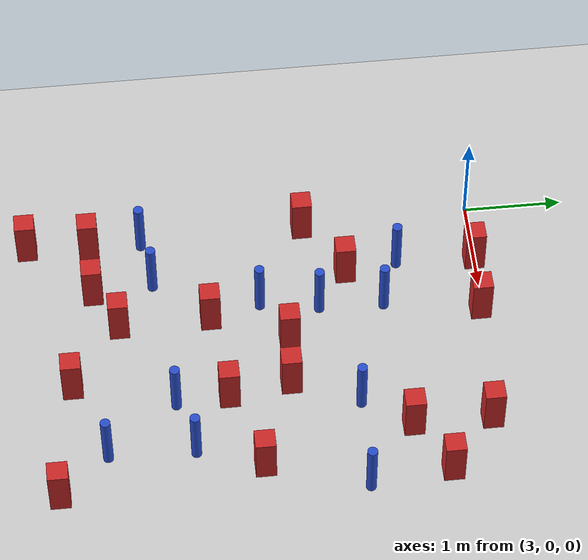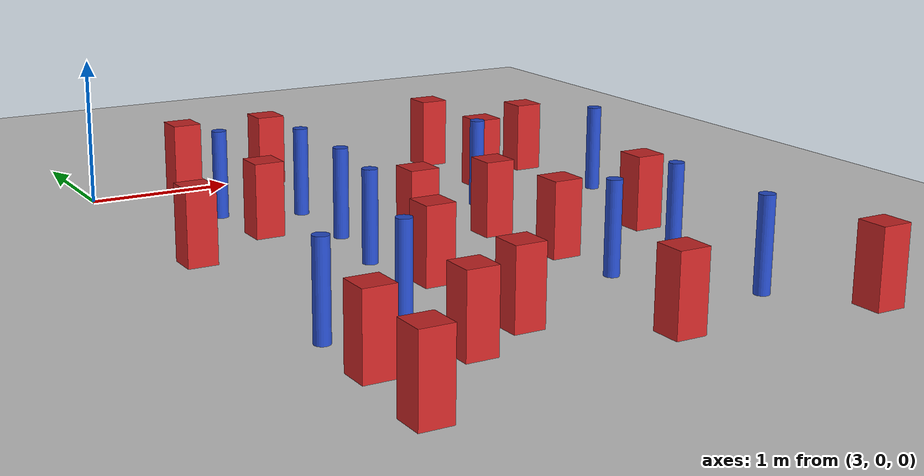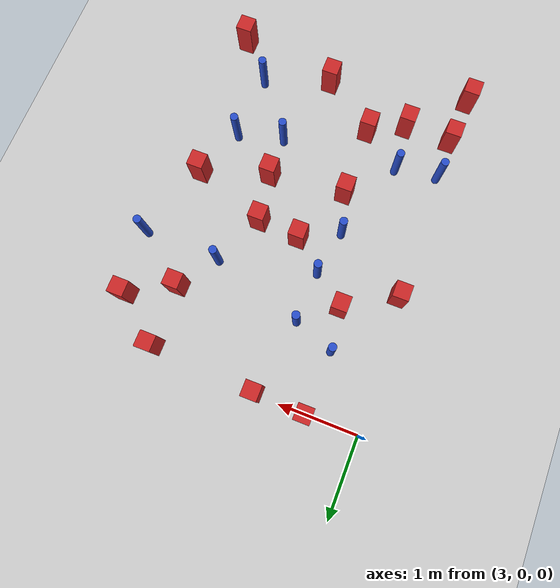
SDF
<sdf version="1.6">
 <world name="default">
  <model name="ground_plane">
   <static>1</static>
   <link name="link">
    <collision name="collision">
     <geometry><plane><normal>0 0 1</normal><size>100 100</size></plane></geometry>
     <surface><friction><ode><mu>100</mu><mu2>50</mu2></ode></friction></surface>
    </collision>
    <visual name="visual">
     <cast_shadows>0</cast_shadows>
     <geometry><plane><normal>0 0 1</normal><size>100 100</size></plane></geometry>
     <material>
      <ambient>1.0 1.0 1.0 1.0</ambient>
      <diffuse>0.8 0.8 0.8 1.0</diffuse>
      <specular>0.01 0.01 0.01 1.000000</specular>
     </material>
    </visual>
   </link>
  </model>
  <model name="square_post_obstacle4">
   <static>true</static>
   <pose>3.71863333824 -1.33802473438 1.91545236811e-07 -7.35059704564e-06 1.12565212e-07 2.39332434364e-05</pose>
   <link name="link">
    <pose>0 0 0.25 0 -0 0</pose>
    <inertial>
     <mass>100</mass>
     <inertia>
      <ixx>0.166667</ixx>
      <ixy>0</ixy>
      <ixz>0</ixz>
      <iyy>0.166667</iyy>
      <iyz>0</iyz>
      <izz>0.166667</izz>
     </inertia>
    </inertial>
    <collision name="collision"><geometry><box><size>.2 .2 .5</size></box></geometry></collision>
    <visual name="visual">
     <geometry><box><size>.2 .2 .5</size></box></geometry>
     <material>
      <script><name>Gazebo/Red</name><uri>file://media/materials/scripts/gazebo.material</uri></script>
     </material>
    </visual>
   </link>
  </model>
  <model name="square_post_obstacle7">
   <static>true</static>
   <pose>4.50447674542 -1.98061000335 1.91545236811e-07 -7.35059704564e-06 1.12565212e-07 2.39332434364e-05</pose>
   <link name="link">
    <pose>0 0 0.25 0 -0 0</pose>
    <inertial>
     <mass>100</mass>
     <inertia>
      <ixx>0.166667</ixx>
      <ixy>0</ixy>
      <ixz>0</ixz>
      <iyy>0.166667</iyy>
      <iyz>0</iyz>
      <izz>0.166667</izz>
     </inertia>
    </inertial>
    <collision name="collision"><geometry><box><size>.2 .2 .5</size></box></geometry></collision>
    <visual name="visual">
     <geometry><box><size>.2 .2 .5</size></box></geometry>
     <material>
      <script><name>Gazebo/Red</name><uri>file://media/materials/scripts/gazebo.material</uri></script>
     </material>
    </visual>
   </link>
  </model>
  <model name="square_post_obstacle23">
   <static>true</static>
   <pose>4.17222592053 -2.74427034642 1.91545236811e-07 -7.35059704564e-06 1.12565212e-07 2.39332434364e-05</pose>
   <link name="link">
    <pose>0 0 0.25 0 -0 0</pose>
    <inertial>
     <mass>100</mass>
     <inertia>
      <ixx>0.166667</ixx>
      <ixy>0</ixy>
      <ixz>0</ixz>
      <iyy>0.166667</iyy>
      <iyz>0</iyz>
      <izz>0.166667</izz>
     </inertia>
    </inertial>
    <collision name="collision"><geometry><box><size>.2 .2 .5</size></box></geometry></collision>
    <visual name="visual">
     <geometry><box><size>.2 .2 .5</size></box></geometry>
     <material>
      <script><name>Gazebo/Red</name><uri>file://media/materials/scripts/gazebo.material</uri></script>
     </material>
    </visual>
   </link>
  </model>
  <model name="pole_obstacle23">
   <static>true</static>
   <pose>5.72053813355 -3.86543438608 7.38925637345e-09 -8.47170692798e-08 1.24976764937e-08 -1.74513093023e-07</pose>
   <link name="link">
    <pose>0 0 0.3 0 -0 0</pose>
    <inertial>
     <mass>1</mass>
     <inertia><ixx>0.145833</ixx><ixy>0</ixy><ixz>0</ixz><iyy>0.145833</iyy><iyz>0</iyz><izz>0.125</izz></inertia>
    </inertial>
    <collision name="collision">
     <geometry><cylinder><radius>0.05</radius><length>.6</length></cylinder></geometry>
    </collision>
    <visual name="visual">
     <geometry><cylinder><radius>0.05</radius><length>.6</length></cylinder></geometry>
     <material>
      <script><name>Gazebo/Blue</name><uri>file://media/materials/scripts/gazebo.material</uri></script>
     </material>
    </visual>
   </link>
  </model>
  <model name="pole_obstacle40">
   <static>true</static>
   <pose>5.33174224511 -1.35963224394 7.38925637345e-09 -8.471706928e-08 1.24976765134e-08 -1.74513093015e-07</pose>
   <link name="link">
    <pose>0 0 0.3 0 -0 0</pose>
    <inertial>
     <mass>1</mass>
     <inertia><ixx>0.145833</ixx><ixy>0</ixy><ixz>0</ixz><iyy>0.145833</iyy><iyz>0</iyz><izz>0.125</izz></inertia>
    </inertial>
    <collision name="collision">
     <geometry><cylinder><radius>0.05</radius><length>.6</length></cylinder></geometry>
    </collision>
    <visual name="visual">
     <geometry><cylinder><radius>0.05</radius><length>.6</length></cylinder></geometry>
     <material>
      <script><name>Gazebo/Blue</name><uri>file://media/materials/scripts/gazebo.material</uri></script>
     </material>
    </visual>
   </link>
  </model>
  <model name="pole_obstacle43">
   <static>true</static>
   <pose>6.31140960115 -1.3834381084 7.38925637345e-09 -8.471706928e-08 1.24976765134e-08 -1.74513093015e-07</pose>
   <link name="link">
    <pose>0 0 0.3 0 -0 0</pose>
    <inertial>
     <mass>1</mass>
     <inertia><ixx>0.145833</ixx><ixy>0</ixy><ixz>0</ixz><iyy>0.145833</iyy><iyz>0</iyz><izz>0.125</izz></inertia>
    </inertial>
    <collision name="collision">
     <geometry><cylinder><radius>0.05</radius><length>.6</length></cylinder></geometry>
    </collision>
    <visual name="visual">
     <geometry><cylinder><radius>0.05</radius><length>.6</length></cylinder></geometry>
     <material>
      <script><name>Gazebo/Blue</name><uri>file://media/materials/scripts/gazebo.material</uri></script>
     </material>
    </visual>
   </link>
  </model>
  <model name="square_post_obstacle45">
   <static>true</static>
   <pose>4.18853118868 -3.66178340515 1.91545236811e-07 -7.35059704564e-06 1.12565212e-07 2.39332434364e-05</pose>
   <link name="link">
    <pose>0 0 0.25 0 -0 0</pose>
    <inertial>
     <mass>100</mass>
     <inertia>
      <ixx>0.166667</ixx>
      <ixy>0</ixy>
      <ixz>0</ixz>
      <iyy>0.166667</iyy>
      <iyz>0</iyz>
      <izz>0.166667</izz>
     </inertia>
    </inertial>
    <collision name="collision"><geometry><box><size>.2 .2 .5</size></box></geometry></collision>
    <visual name="visual">
     <geometry><box><size>.2 .2 .5</size></box></geometry>
     <material>
      <script><name>Gazebo/Red</name><uri>file://media/materials/scripts/gazebo.material</uri></script>
     </material>
    </visual>
   </link>
  </model>
  <model name="square_post_obstacle51">
   <static>true</static>
   <pose>5.98912921172 -2.36923768804 1.91545236811e-07 -7.35059704564e-06 1.12565212e-07 2.39332434364e-05</pose>
   <link name="link">
    <pose>0 0 0.25 0 -0 0</pose>
    <inertial>
     <mass>100</mass>
     <inertia>
      <ixx>0.166667</ixx>
      <ixy>0</ixy>
      <ixz>0</ixz>
      <iyy>0.166667</iyy>
      <iyz>0</iyz>
      <izz>0.166667</izz>
     </inertia>
    </inertial>
    <collision name="collision"><geometry><box><size>.2 .2 .5</size></box></geometry></collision>
    <visual name="visual">
     <geometry><box><size>.2 .2 .5</size></box></geometry>
     <material>
      <script><name>Gazebo/Red</name><uri>file://media/materials/scripts/gazebo.material</uri></script>
     </material>
    </visual>
   </link>
  </model>
  <model name="square_post_obstacle69">
   <static>true</static>
   <pose>3.74224842 -3.89838014834 1.91545236811e-07 -7.35059704564e-06 1.12565212e-07 2.39332434364e-05</pose>
   <link name="link">
    <pose>0 0 0.25 0 -0 0</pose>
    <inertial>
     <mass>100</mass>
     <inertia>
      <ixx>0.166667</ixx>
      <ixy>0</ixy>
      <ixz>0</ixz>
      <iyy>0.166667</iyy>
      <iyz>0</iyz>
      <izz>0.166667</izz>
     </inertia>
    </inertial>
    <collision name="collision"><geometry><box><size>.2 .2 .5</size></box></geometry></collision>
    <visual name="visual">
     <geometry><box><size>.2 .2 .5</size></box></geometry>
     <material>
      <script><name>Gazebo/Red</name><uri>file://media/materials/scripts/gazebo.material</uri></script>
     </material>
    </visual>
   </link>
  </model>
  <model name="square_post_obstacle71">
   <static>true</static>
   <pose>5.6562285807 -0.113850046416 1.91545236811e-07 -7.35059704564e-06 1.12565212e-07 2.39332434364e-05</pose>
   <link name="link">
    <pose>0 0 0.25 0 -0 0</pose>
    <inertial>
     <mass>100</mass>
     <inertia>
      <ixx>0.166667</ixx>
      <ixy>0</ixy>
      <ixz>0</ixz>
      <iyy>0.166667</iyy>
      <iyz>0</iyz>
      <izz>0.166667</izz>
     </inertia>
    </inertial>
    <collision name="collision"><geometry><box><size>.2 .2 .5</size></box></geometry></collision>
    <visual name="visual">
     <geometry><box><size>.2 .2 .5</size></box></geometry>
     <material>
      <script><name>Gazebo/Red</name><uri>file://media/materials/scripts/gazebo.material</uri></script>
     </material>
    </visual>
   </link>
  </model>
  <model name="square_post_obstacle75">
   <static>true</static>
   <pose>6.14947851651 -4.34877087692 1.91545236811e-07 -7.35059704564e-06 1.12565212e-07 2.39332434364e-05</pose>
   <link name="link">
    <pose>0 0 0.25 0 -0 0</pose>
    <inertial>
     <mass>100</mass>
     <inertia>
      <ixx>0.166667</ixx>
      <ixy>0</ixy>
      <ixz>0</ixz>
      <iyy>0.166667</iyy>
      <iyz>0</iyz>
      <izz>0.166667</izz>
     </inertia>
    </inertial>
    <collision name="collision"><geometry><box><size>.2 .2 .5</size></box></geometry></collision>
    <visual name="visual">
     <geometry><box><size>.2 .2 .5</size></box></geometry>
     <material>
      <script><name>Gazebo/Red</name><uri>file://media/materials/scripts/gazebo.material</uri></script>
     </material>
    </visual>
   </link>
  </model>
  <model name="pole_obstacle70">
   <static>true</static>
   <pose>4.14983361388 -0.992908050601 7.38925637345e-09 -8.47170692799e-08 1.24976765054e-08 -1.74513093018e-07</pose>
   <link name="link">
    <pose>0 0 0.3 0 -0 0</pose>
    <inertial>
     <mass>1</mass>
     <inertia><ixx>0.145833</ixx><ixy>0</ixy><ixz>0</ixz><iyy>0.145833</iyy><iyz>0</iyz><izz>0.125</izz></inertia>
    </inertial>
    <collision name="collision">
     <geometry><cylinder><radius>0.05</radius><length>.6</length></cylinder></geometry>
    </collision>
    <visual name="visual">
     <geometry><cylinder><radius>0.05</radius><length>.6</length></cylinder></geometry>
     <material>
      <script><name>Gazebo/Blue</name><uri>file://media/materials/scripts/gazebo.material</uri></script>
     </material>
    </visual>
   </link>
  </model>
  <model name="pole_obstacle98">
   <static>true</static>
   <pose>5.75214173576 -3.01406670248 7.38925637345e-09 -8.47170692798e-08 1.24976764937e-08 -1.74513093023e-07</pose>
   <link name="link">
    <pose>0 0 0.3 0 -0 0</pose>
    <inertial>
     <mass>1</mass>
     <inertia><ixx>0.145833</ixx><ixy>0</ixy><ixz>0</ixz><iyy>0.145833</iyy><iyz>0</iyz><izz>0.125</izz></inertia>
    </inertial>
    <collision name="collision">
     <geometry><cylinder><radius>0.05</radius><length>.6</length></cylinder></geometry>
    </collision>
    <visual name="visual">
     <geometry><cylinder><radius>0.05</radius><length>.6</length></cylinder></geometry>
     <material>
      <script><name>Gazebo/Blue</name><uri>file://media/materials/scripts/gazebo.material</uri></script>
     </material>
    </visual>
   </link>
  </model>
  <model name="pole_obstacle100">
   <static>true</static>
   <pose>3.67606983754 -3.29273047336 7.38925637345e-09 -8.47170692798e-08 1.24976764939e-08 -1.74513093025e-07</pose>
   <link name="link">
    <pose>0 0 0.3 0 -0 0</pose>
    <inertial>
     <mass>1</mass>
     <inertia><ixx>0.145833</ixx><ixy>0</ixy><ixz>0</ixz><iyy>0.145833</iyy><iyz>0</iyz><izz>0.125</izz></inertia>
    </inertial>
    <collision name="collision">
     <geometry><cylinder><radius>0.05</radius><length>.6</length></cylinder></geometry>
    </collision>
    <visual name="visual">
     <geometry><cylinder><radius>0.05</radius><length>.6</length></cylinder></geometry>
     <material>
      <script><name>Gazebo/Blue</name><uri>file://media/materials/scripts/gazebo.material</uri></script>
     </material>
    </visual>
   </link>
  </model>
  <model name="pole_obstacle121">
   <static>true</static>
   <pose>4.02691803334 -2.23331481966 7.38925637345e-09 -8.47170692799e-08 1.24976765e-08 -1.7451309302e-07</pose>
   <link name="link">
    <pose>0 0 0.3 0 -0 0</pose>
    <inertial>
     <mass>1</mass>
     <inertia><ixx>0.145833</ixx><ixy>0</ixy><ixz>0</ixz><iyy>0.145833</iyy><iyz>0</iyz><izz>0.125</izz></inertia>
    </inertial>
    <collision name="collision">
     <geometry><cylinder><radius>0.05</radius><length>.6</length></cylinder></geometry>
    </collision>
    <visual name="visual">
     <geometry><cylinder><radius>0.05</radius><length>.6</length></cylinder></geometry>
     <material>
      <script><name>Gazebo/Blue</name><uri>file://media/materials/scripts/gazebo.material</uri></script>
     </material>
    </visual>
   </link>
  </model>
  <model name="square_post_obstacle119">
   <static>true</static>
   <pose>3.6766508005 -0.0095552116733 1.91545236811e-07 -7.35059704564e-06 1.12565212e-07 2.39332434364e-05</pose>
   <link name="link">
    <pose>0 0 0.25 0 -0 0</pose>
    <inertial>
     <mass>100</mass>
     <inertia>
      <ixx>0.166667</ixx>
      <ixy>0</ixy>
      <ixz>0</ixz>
      <iyy>0.166667</iyy>
      <iyz>0</iyz>
      <izz>0.166667</izz>
     </inertia>
    </inertial>
    <collision name="collision"><geometry><box><size>.2 .2 .5</size></box></geometry></collision>
    <visual name="visual">
     <geometry><box><size>.2 .2 .5</size></box></geometry>
     <material>
      <script><name>Gazebo/Red</name><uri>file://media/materials/scripts/gazebo.material</uri></script>
     </material>
    </visual>
   </link>
  </model>
  <model name="square_post_obstacle125">
   <static>true</static>
   <pose>5.14370532662 -2.6389546352 1.91545236811e-07 -7.35059704564e-06 1.12565212e-07 2.39332434364e-05</pose>
   <link name="link">
    <pose>0 0 0.25 0 -0 0</pose>
    <inertial>
     <mass>100</mass>
     <inertia>
      <ixx>0.166667</ixx>
      <ixy>0</ixy>
      <ixz>0</ixz>
      <iyy>0.166667</iyy>
      <iyz>0</iyz>
      <izz>0.166667</izz>
     </inertia>
    </inertial>
    <collision name="collision"><geometry><box><size>.2 .2 .5</size></box></geometry></collision>
    <visual name="visual">
     <geometry><box><size>.2 .2 .5</size></box></geometry>
     <material>
      <script><name>Gazebo/Red</name><uri>file://media/materials/scripts/gazebo.material</uri></script>
     </material>
    </visual>
   </link>
  </model>
  <model name="pole_obstacle152">
   <static>true</static>
   <pose>3.63625834366 -0.801707942494 7.38925637345e-09 -8.471706928e-08 1.24976765177e-08 -1.74513093012e-07</pose>
   <link name="link">
    <pose>0 0 0.3 0 -0 0</pose>
    <inertial>
     <mass>1</mass>
     <inertia><ixx>0.145833</ixx><ixy>0</ixy><ixz>0</ixz><iyy>0.145833</iyy><iyz>0</iyz><izz>0.125</izz></inertia>
    </inertial>
    <collision name="collision">
     <geometry><cylinder><radius>0.05</radius><length>.6</length></cylinder></geometry>
    </collision>
    <visual name="visual">
     <geometry><cylinder><radius>0.05</radius><length>.6</length></cylinder></geometry>
     <material>
      <script><name>Gazebo/Blue</name><uri>file://media/materials/scripts/gazebo.material</uri></script>
     </material>
    </visual>
   </link>
  </model>
  <model name="pole_obstacle156">
   <static>true</static>
   <pose>4.1266174675 -1.64251256414 7.38925637345e-09 -8.471706928e-08 1.24976765134e-08 -1.74513093015e-07</pose>
   <link name="link">
    <pose>0 0 0.3 0 -0 0</pose>
    <inertial>
     <mass>1</mass>
     <inertia><ixx>0.145833</ixx><ixy>0</ixy><ixz>0</ixz><iyy>0.145833</iyy><iyz>0</iyz><izz>0.125</izz></inertia>
    </inertial>
    <collision name="collision">
     <geometry><cylinder><radius>0.05</radius><length>.6</length></cylinder></geometry>
    </collision>
    <visual name="visual">
     <geometry><cylinder><radius>0.05</radius><length>.6</length></cylinder></geometry>
     <material>
      <script><name>Gazebo/Blue</name><uri>file://media/materials/scripts/gazebo.material</uri></script>
     </material>
    </visual>
   </link>
  </model>
  <model name="square_post_obstacle151">
   <static>true</static>
   <pose>3.09723972489 -1.71734407023 1.91545236811e-07 -7.35059704564e-06 1.12565212e-07 2.39332434364e-05</pose>
   <link name="link">
    <pose>0 0 0.25 0 -0 0</pose>
    <inertial>
     <mass>100</mass>
     <inertia>
      <ixx>0.166667</ixx>
      <ixy>0</ixy>
      <ixz>0</ixz>
      <iyy>0.166667</iyy>
      <iyz>0</iyz>
      <izz>0.166667</izz>
     </inertia>
    </inertial>
    <collision name="collision"><geometry><box><size>.2 .2 .5</size></box></geometry></collision>
    <visual name="visual">
     <geometry><box><size>.2 .2 .5</size></box></geometry>
     <material>
      <script><name>Gazebo/Red</name><uri>file://media/materials/scripts/gazebo.material</uri></script>
     </material>
    </visual>
   </link>
  </model>
  <model name="pole_obstacle160">
   <static>true</static>
   <pose>5.1701030258 -3.16360257551 7.38925637345e-09 -8.47170692798e-08 1.24976764937e-08 -1.74513093023e-07</pose>
   <link name="link">
    <pose>0 0 0.3 0 -0 0</pose>
    <inertial>
     <mass>1</mass>
     <inertia><ixx>0.145833</ixx><ixy>0</ixy><ixz>0</ixz><iyy>0.145833</iyy><iyz>0</iyz><izz>0.125</izz></inertia>
    </inertial>
    <collision name="collision">
     <geometry><cylinder><radius>0.05</radius><length>.6</length></cylinder></geometry>
    </collision>
    <visual name="visual">
     <geometry><cylinder><radius>0.05</radius><length>.6</length></cylinder></geometry>
     <material>
      <script><name>Gazebo/Blue</name><uri>file://media/materials/scripts/gazebo.material</uri></script>
     </material>
    </visual>
   </link>
  </model>
  <model name="square_post_obstacle156">
   <static>true</static>
   <pose>4.88239168183 -4.1635466338 1.91545236811e-07 -7.35059704564e-06 1.12565212e-07 2.39332434364e-05</pose>
   <link name="link">
    <pose>0 0 0.25 0 -0 0</pose>
    <inertial>
     <mass>100</mass>
     <inertia>
      <ixx>0.166667</ixx>
      <ixy>0</ixy>
      <ixz>0</ixz>
      <iyy>0.166667</iyy>
      <iyz>0</iyz>
      <izz>0.166667</izz>
     </inertia>
    </inertial>
    <collision name="collision"><geometry><box><size>.2 .2 .5</size></box></geometry></collision>
    <visual name="visual">
     <geometry><box><size>.2 .2 .5</size></box></geometry>
     <material>
      <script><name>Gazebo/Red</name><uri>file://media/materials/scripts/gazebo.material</uri></script>
     </material>
    </visual>
   </link>
  </model>
  <model name="square_post_obstacle157">
   <static>true</static>
   <pose>4.31847600752 -0.035368052901 1.91545236811e-07 -7.35059704564e-06 1.12565212e-07 2.39332434364e-05</pose>
   <link name="link">
    <pose>0 0 0.25 0 -0 0</pose>
    <inertial>
     <mass>100</mass>
     <inertia>
      <ixx>0.166667</ixx>
      <ixy>0</ixy>
      <ixz>0</ixz>
      <iyy>0.166667</iyy>
      <iyz>0</iyz>
      <izz>0.166667</izz>
     </inertia>
    </inertial>
    <collision name="collision"><geometry><box><size>.2 .2 .5</size></box></geometry></collision>
    <visual name="visual">
     <geometry><box><size>.2 .2 .5</size></box></geometry>
     <material>
      <script><name>Gazebo/Red</name><uri>file://media/materials/scripts/gazebo.material</uri></script>
     </material>
    </visual>
   </link>
  </model>
  <model name="square_post_obstacle169">
   <static>true</static>
   <pose>6.21876925951 -0.578064690758 1.91545236811e-07 -7.35059704564e-06 1.12565212e-07 2.39332434364e-05</pose>
   <link name="link">
    <pose>0 0 0.25 0 -0 0</pose>
    <inertial>
     <mass>100</mass>
     <inertia>
      <ixx>0.166667</ixx>
      <ixy>0</ixy>
      <ixz>0</ixz>
      <iyy>0.166667</iyy>
      <iyz>0</iyz>
      <izz>0.166667</izz>
     </inertia>
    </inertial>
    <collision name="collision"><geometry><box><size>.2 .2 .5</size></box></geometry></collision>
    <visual name="visual">
     <geometry><box><size>.2 .2 .5</size></box></geometry>
     <material>
      <script><name>Gazebo/Red</name><uri>file://media/materials/scripts/gazebo.material</uri></script>
     </material>
    </visual>
   </link>
  </model>
  <model name="square_post_obstacle180">
   <static>true</static>
   <pose>5.65973637984 -0.888152058139 1.91545236811e-07 -7.35059704564e-06 1.12565212e-07 2.39332434364e-05</pose>
   <link name="link">
    <pose>0 0 0.25 0 -0 0</pose>
    <inertial>
     <mass>100</mass>
     <inertia>
      <ixx>0.166667</ixx>
      <ixy>0</ixy>
      <ixz>0</ixz>
      <iyy>0.166667</iyy>
      <iyz>0</iyz>
      <izz>0.166667</izz>
     </inertia>
    </inertial>
    <collision name="collision"><geometry><box><size>.2 .2 .5</size></box></geometry></collision>
    <visual name="visual">
     <geometry><box><size>.2 .2 .5</size></box></geometry>
     <material>
      <script><name>Gazebo/Red</name><uri>file://media/materials/scripts/gazebo.material</uri></script>
     </material>
    </visual>
   </link>
  </model>
  <model name="pole_obstacle201">
   <static>true</static>
   <pose>3.13782047504 -3.37505679537 7.38925637345e-09 -8.47170692798e-08 1.24976764939e-08 -1.74513093025e-07</pose>
   <link name="link">
    <pose>0 0 0.3 0 -0 0</pose>
    <inertial>
     <mass>1</mass>
     <inertia><ixx>0.145833</ixx><ixy>0</ixy><ixz>0</ixz><iyy>0.145833</iyy><iyz>0</iyz><izz>0.125</izz></inertia>
    </inertial>
    <collision name="collision">
     <geometry><cylinder><radius>0.05</radius><length>.6</length></cylinder></geometry>
    </collision>
    <visual name="visual">
     <geometry><cylinder><radius>0.05</radius><length>.6</length></cylinder></geometry>
     <material>
      <script><name>Gazebo/Blue</name><uri>file://media/materials/scripts/gazebo.material</uri></script>
     </material>
    </visual>
   </link>
  </model>
  <model name="square_post_obstacle198">
   <static>true</static>
   <pose>5.04123226054 -2.02048120841 1.91545236811e-07 -7.35059704564e-06 1.12565212e-07 2.39332434364e-05</pose>
   <link name="link">
    <pose>0 0 0.25 0 -0 0</pose>
    <inertial>
     <mass>100</mass>
     <inertia>
      <ixx>0.166667</ixx>
      <ixy>0</ixy>
      <ixz>0</ixz>
      <iyy>0.166667</iyy>
      <iyz>0</iyz>
      <izz>0.166667</izz>
     </inertia>
    </inertial>
    <collision name="collision"><geometry><box><size>.2 .2 .5</size></box></geometry></collision>
    <visual name="visual">
     <geometry><box><size>.2 .2 .5</size></box></geometry>
     <material>
      <script><name>Gazebo/Red</name><uri>file://media/materials/scripts/gazebo.material</uri></script>
     </material>
    </visual>
   </link>
  </model>
  <model name="square_post_obstacle202">
   <static>true</static>
   <pose>3.09993291642 -4.53615091671 1.91545236811e-07 -7.35059704564e-06 1.12565212e-07 2.39332434364e-05</pose>
   <link name="link">
    <pose>0 0 0.25 0 -0 0</pose>
    <inertial>
     <mass>100</mass>
     <inertia>
      <ixx>0.166667</ixx>
      <ixy>0</ixy>
      <ixz>0</ixz>
      <iyy>0.166667</iyy>
      <iyz>0</iyz>
      <izz>0.166667</izz>
     </inertia>
    </inertial>
    <collision name="collision"><geometry><box><size>.2 .2 .5</size></box></geometry></collision>
    <visual name="visual">
     <geometry><box><size>.2 .2 .5</size></box></geometry>
     <material>
      <script><name>Gazebo/Red</name><uri>file://media/materials/scripts/gazebo.material</uri></script>
     </material>
    </visual>
   </link>
  </model>
  <model name="square_post_obstacle242">
   <static>true</static>
   <pose>3.1463699648 -3.90606001192 1.91545236811e-07 -7.35059704564e-06 1.12565212e-07 2.39332434364e-05</pose>
   <link name="link">
    <pose>0 0 0.25 0 -0 0</pose>
    <inertial>
     <mass>100</mass>
     <inertia>
      <ixx>0.166667</ixx>
      <ixy>0</ixy>
      <ixz>0</ixz>
      <iyy>0.166667</iyy>
      <iyz>0</iyz>
      <izz>0.166667</izz>
     </inertia>
    </inertial>
    <collision name="collision"><geometry><box><size>.2 .2 .5</size></box></geometry></collision>
    <visual name="visual">
     <geometry><box><size>.2 .2 .5</size></box></geometry>
     <material>
      <script><name>Gazebo/Red</name><uri>file://media/materials/scripts/gazebo.material</uri></script>
     </material>
    </visual>
   </link>
  </model>
 </world>
</sdf>
